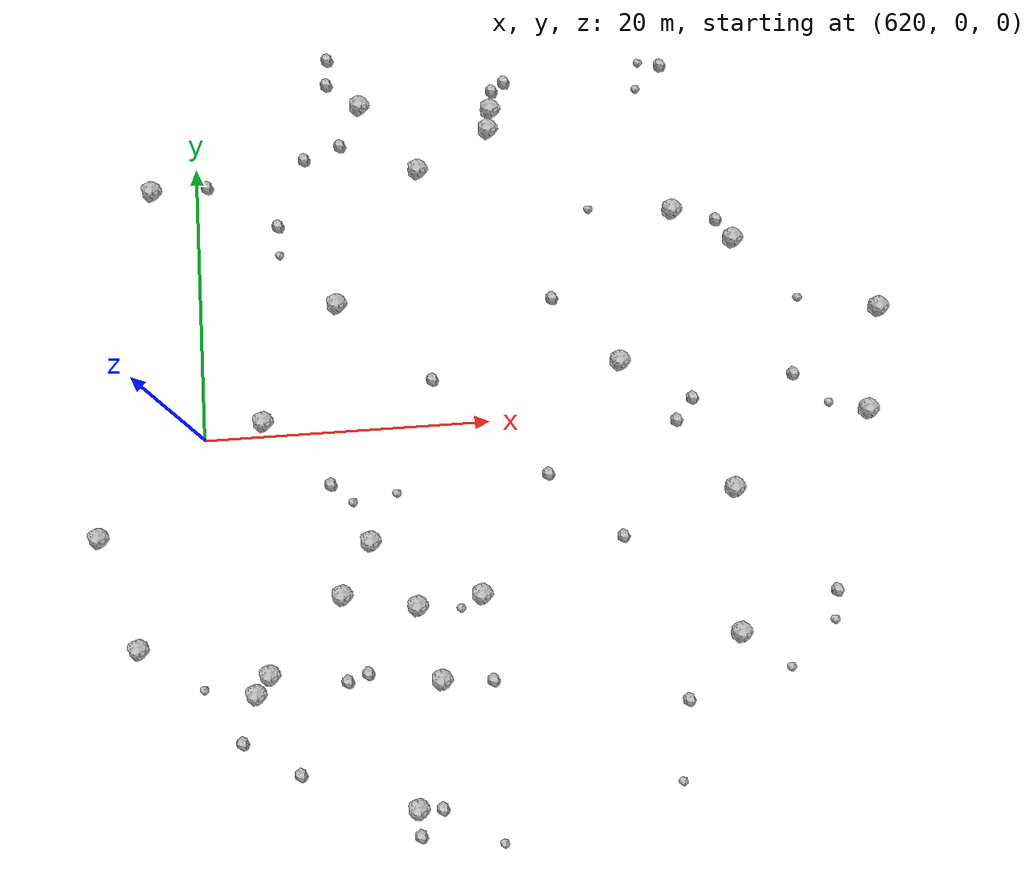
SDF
<sdf version="1.6">
 <world name="default">
  <include><uri>model://sun</uri></include>
  <model name="rock1_16_3">
   <include><uri>model://rock1</uri><pose>654.1886967226085 14.546119470667414 0.5 0 0 0</pose></include>
  </model>
  <model name="rock1_16_4">
   <include><uri>model://rock1</uri><pose>616.8304652246248 18.458743571298143 0.5 0 0 0</pose></include>
  </model>
  <model name="rock1_16_5">
   <include><uri>model://rock1</uri><pose>641.6363964643518 23.096064903838403 0.5 0 0 0</pose></include>
  </model>
  <model name="rock1_16_6">
   <include><uri>model://rock1</uri><pose>623.0344069927455 -17.72681414947033 0.5 0 0 0</pose></include>
  </model>
  <model name="rock1_16_7">
   <include><uri>model://rock1</uri><pose>649.5040905829466 3.6642352020675375 0.5 0 0 0</pose></include>
  </model>
  <model name="rock1_16_8">
   <include><uri>model://rock1</uri><pose>624.197636014112 0.984322277502617 0.5 0 0 0</pose></include>
  </model>
  <model name="rock1_16_9">
   <include><uri>model://rock1</uri><pose>612.5942219356614 -6.412035122640248 0.5 0 0 0</pose></include>
  </model>
  <model name="rock1_16_10">
   <include><uri>model://rock1</uri><pose>615.1784802942339 -14.184919278713847 0.5 0 0 0</pose></include>
  </model>
  <model name="rock1_16_11">
   <include><uri>model://rock1</uri><pose>636.0852321798524 18.82566457833837 0.5 0 0 0</pose></include>
  </model>
  <model name="rock1_16_12">
   <include><uri>model://rock1</uri><pose>656.1414441780497 -15.811496823170728 0.5 0 0 0</pose></include>
  </model>
  <model name="rock1_16_13">
   <include><uri>model://rock1</uri><pose>666.609421921415 -0.9935457885686425 0.5 0 0 0</pose></include>
  </model>
  <model name="rock1_16_14">
   <include><uri>model://rock1</uri><pose>635.6097593874711 -17.59402628721582 0.5 0 0 0</pose></include>
  </model>
  <model name="rock1_16_15">
   <include><uri>model://rock1</uri><pose>632.1184210224924 24.0152976044905 0.5 0 0 0</pose></include>
  </model>
  <model name="rock1_16_16">
   <include><uri>model://rock1</uri><pose>668.1618429055668 6.324685897307631 0.5 0 0 0</pose></include>
  </model>
  <model name="rock1_16_17">
   <include><uri>model://rock1</uri><pose>634.2590041522737 -12.53161258889822 0.5 0 0 0</pose></include>
  </model>
  <model name="rock1_16_18">
   <include><uri>model://rock1</uri><pose>658.3291831187912 12.11076733672985 0.5 0 0 0</pose></include>
  </model>
  <model name="rock1_16_19">
   <include><uri>model://rock1</uri><pose>629.7545236834004 9.162927554296104 0.5 0 0 0</pose></include>
  </model>
  <model name="rock1_16_20">
   <include><uri>model://rock1</uri><pose>633.5416194654679 -25.94388616898003 0.5 0 0 0</pose></include>
  </model>
  <model name="rock1_16_21">
   <include><uri>model://rock1</uri><pose>656.7099121771661 -5.883793390170759 0.5 0 0 0</pose></include>
  </model>
  <model name="rock1_16_22">
   <include><uri>model://rock1</uri><pose>623.9997062191139 -16.502493436585294 0.5 0 0 0</pose></include>
  </model>
  <model name="rock1_16_23">
   <include><uri>model://rock1</uri><pose>638.7128559801329 -12.02481594007628 0.5 0 0 0</pose></include>
  </model>
  <model name="rock1_16_24">
   <include><uri>model://rock1</uri><pose>629.1449803600675 -11.465504730010338 0.5 0 0 0</pose></include>
  </model>
  <model name="rock1_16_25">
   <include><uri>model://rock1</uri><pose>631.2789193029056 -7.899345922792307 0.5 0 0 0</pose></include>
  </model>
  <model name="rock1_16_26">
   <include><uri>model://rock1</uri><pose>641.3670387236251 21.582942699646487 0.5 0 0 0</pose></include>
  </model>
  <model name="rock2_16_0">
   <include><uri>model://rock2</uri><pose>642.7662565269424 25.213513255033988 0.3 0 0 0</pose></include>
  </model>
  <model name="rock2_16_1">
   <include><uri>model://rock2</uri><pose>625.7888160029846 15.290737193300046 0.3 0 0 0</pose></include>
  </model>
  <model name="rock2_16_2">
   <include><uri>model://rock2</uri><pose>625.7836241346108 -23.20756125527536 0.3 0 0 0</pose></include>
  </model>
  <model name="rock2_16_3">
   <include><uri>model://rock2</uri><pose>621.9659110636394 -20.88018016222346 0.3 0 0 0</pose></include>
  </model>
  <model name="rock2_16_4">
   <include><uri>model://rock2</uri><pose>630.6316243333006 -16.83339947422656 0.3 0 0 0</pose></include>
  </model>
  <model name="rock2_16_5">
   <include><uri>model://rock2</uri><pose>641.8367419195423 24.589430235852042 0.3 0 0 0</pose></include>
  </model>
  <model name="rock2_16_6">
   <include><uri>model://rock2</uri><pose>630.5141280257166 21.09820581421284 0.3 0 0 0</pose></include>
  </model>
  <model name="rock2_16_7">
   <include><uri>model://rock2</uri><pose>629.2254755006616 -17.28482095878744 0.3 0 0 0</pose></include>
  </model>
  <model name="rock2_16_8">
   <include><uri>model://rock2</uri><pose>639.0691786111615 -17.844022932876904 0.3 0 0 0</pose></include>
  </model>
  <model name="rock2_16_9">
   <include><uri>model://rock2</uri><pose>663.006719837362 -13.401910050656255 0.3 0 0 0</pose></include>
  </model>
  <model name="rock2_16_10">
   <include><uri>model://rock2</uri><pose>635.1393532081304 -26.034133854116835 0.3 0 0 0</pose></include>
  </model>
  <model name="rock2_16_11">
   <include><uri>model://rock2</uri><pose>654.3585006377201 0.675138844266602 0.3 0 0 0</pose></include>
  </model>
  <model name="rock2_16_12">
   <include><uri>model://rock2</uri><pose>648.6958177700199 -8.70050801226457 0.3 0 0 0</pose></include>
  </model>
  <model name="rock2_16_13">
   <include><uri>model://rock2</uri><pose>654.3155321950769 25.760635886504176 0.3 0 0 0</pose></include>
  </model>
  <model name="rock2_16_14">
   <include><uri>model://rock2</uri><pose>620.780436828681 18.564483899949124 0.3 0 0 0</pose></include>
  </model>
  <model name="rock2_16_15">
   <include><uri>model://rock2</uri><pose>636.1867978431725 3.232152349583359 0.3 0 0 0</pose></include>
  </model>
  <model name="rock2_16_16">
   <include><uri>model://rock2</uri><pose>629.7526143424157 25.898287448865844 0.3 0 0 0</pose></include>
  </model>
  <model name="rock2_16_17">
   <include><uri>model://rock2</uri><pose>643.848231135463 -4.019076906446507 0.3 0 0 0</pose></include>
  </model>
  <model name="rock2_16_18">
   <include><uri>model://rock2</uri><pose>628.6915323207585 -3.731972931756534 0.3 0 0 0</pose></include>
  </model>
  <model name="rock2_16_19">
   <include><uri>model://rock2</uri><pose>633.5857035890679 -27.707507383044117 0.3 0 0 0</pose></include>
  </model>
  <model name="rock2_16_20">
   <include><uri>model://rock2</uri><pose>629.9019859660581 27.850730996737447 0.3 0 0 0</pose></include>
  </model>
  <model name="rock2_16_21">
   <include><uri>model://rock2</uri><pose>652.1695280374391 -20.06379241123962 0.3 0 0 0</pose></include>
  </model>
  <model name="rock2_16_22">
   <include><uri>model://rock2</uri><pose>657.2680843050707 13.64767365833648 0.3 0 0 0</pose></include>
  </model>
  <model name="rock2_16_23">
   <include><uri>model://rock2</uri><pose>653.1054485191004 -0.8352239783370905 0.3 0 0 0</pose></include>
  </model>
  <model name="rock2_16_24">
   <include><uri>model://rock2</uri><pose>645.0406562766741 8.590495040828586 0.3 0 0 0</pose></include>
  </model>
  <model name="rock2_16_25">
   <include><uri>model://rock2</uri><pose>661.603729619785 1.9203610959282145 0.3 0 0 0</pose></include>
  </model>
  <model name="rock2_16_26">
   <include><uri>model://rock2</uri><pose>627.8814204282802 20.2064532116829 0.3 0 0 0</pose></include>
  </model>
  <model name="rock3_16_0">
   <include><uri>model://rock3</uri><pose>662.6326882135414 -15.40792346265117 0.2 0 0 0</pose></include>
  </model>
  <model name="rock3_16_1">
   <include><uri>model://rock3</uri><pose>652.7466337615413 26.067437271776733 0.2 0 0 0</pose></include>
  </model>
  <model name="rock3_16_2">
   <include><uri>model://rock3</uri><pose>648.1639059003991 15.02783061616855 0.2 0 0 0</pose></include>
  </model>
  <model name="rock3_16_3">
   <include><uri>model://rock3</uri><pose>633.2149847828491 -4.666851076473996 0.2 0 0 0</pose></include>
  </model>
  <model name="rock3_16_4">
   <include><uri>model://rock3</uri><pose>637.173510039506 -12.8816732024078 0.2 0 0 0</pose></include>
  </model>
  <model name="rock3_16_5">
   <include><uri>model://rock3</uri><pose>659.3070513035933 -18.380195641593218 0.2 0 0 0</pose></include>
  </model>
  <model name="rock3_16_6">
   <include><uri>model://rock3</uri><pose>630.1408275374979 -5.098955900813621 0.2 0 0 0</pose></include>
  </model>
  <model name="rock3_16_7">
   <include><uri>model://rock3</uri><pose>663.8998870420065 -0.32461465595947914 0.2 0 0 0</pose></include>
  </model>
  <model name="rock3_16_8">
   <include><uri>model://rock3</uri><pose>651.2571227473554 -25.39679483442044 0.2 0 0 0</pose></include>
  </model>
  <model name="rock3_16_9">
   <include><uri>model://rock3</uri><pose>639.0477391596166 -28.568111735153714 0.2 0 0 0</pose></include>
  </model>
  <model name="rock3_16_10">
   <include><uri>model://rock3</uri><pose>619.4625339630179 -17.21716261044066 0.2 0 0 0</pose></include>
  </model>
  <model name="rock3_16_11">
   <include><uri>model://rock3</uri><pose>662.532576542966 7.44529249055482 0.2 0 0 0</pose></include>
  </model>
  <model name="rock3_16_12">
   <include><uri>model://rock3</uri><pose>652.3734030989791 24.023505697926204 0.2 0 0 0</pose></include>
  </model>
  <model name="rock3_16_13">
   <include><uri>model://rock3</uri><pose>625.7865660125293 13.09716829686149 0.2 0 0 0</pose></include>
  </model>
 </world>
</sdf>
